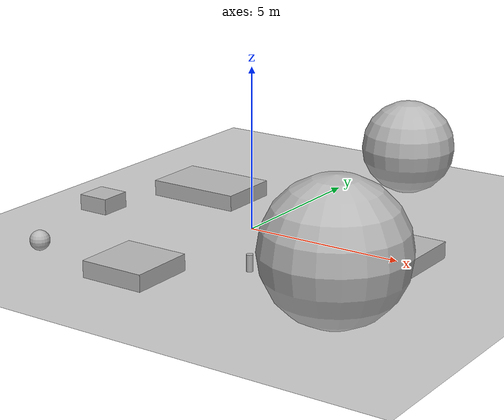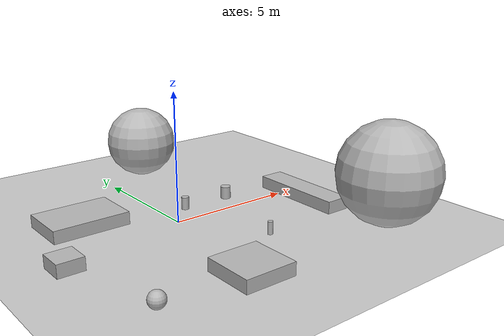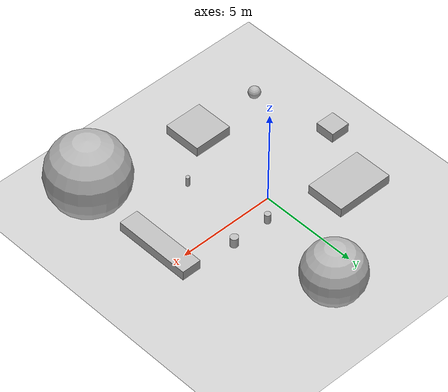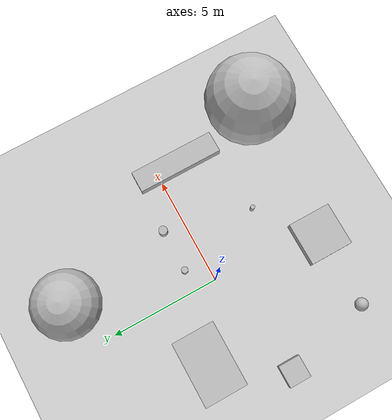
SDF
<sdf version='1.7'>
  <world name='default'>
    <light name='sun' type='directional'>
      <cast_shadows>1</cast_shadows>
      <pose>0 0 10 0 -0 0</pose>
      <diffuse>0.8 0.8 0.8 1</diffuse>
      <specular>0.2 0.2 0.2 1</specular>
      <attenuation>
        <range>1000</range>
        <constant>0.9</constant>
        <linear>0.01</linear>
        <quadratic>0.001</quadratic>
      </attenuation>
      <direction>-0.5 0.1 -0.9</direction>
      <spot>
        <inner_angle>0</inner_angle>
        <outer_angle>0</outer_angle>
        <falloff>0</falloff>
      </spot>
    </light>

    <model name='ground_plane'>
      <static>1</static>
      <link name='link'>
        <collision name='collision'>
          <geometry>
            <plane>
              <normal>0 0 1</normal>
              <size>100 100</size>
            </plane>
          </geometry>
          <surface>
            <contact>
              <collide_bitmask>65535</collide_bitmask>
              <ode/>
            </contact>
            <friction>
              <ode>
                <mu>100</mu>
                <mu2>50</mu2>
              </ode>
              <torsional>
                <ode/>
              </torsional>
            </friction>
            <bounce/>
          </surface>
          <max_contacts>10</max_contacts>
        </collision>
        <visual name='visual'>
          <cast_shadows>0</cast_shadows>
          <geometry>
            <plane>
              <normal>0 0 1</normal>
              <size>100 100</size>
            </plane>
          </geometry>
          <material>
            <script>
              <uri>file://media/materials/scripts/gazebo.material</uri>
              <name>Gazebo/Grey</name>
            </script>
          </material>
        </visual>
        <self_collide>0</self_collide>
        <enable_wind>0</enable_wind>
        <kinematic>0</kinematic>
      </link>
    </model>

    <gravity>0 0 -9.8</gravity>

    <physics type='ode'>
      <max_step_size>0.001</max_step_size>
      <real_time_factor>1</real_time_factor>
      <real_time_update_rate>1000</real_time_update_rate>
    </physics>

    <scene>
      <ambient>0.4 0.4 0.4 1</ambient>
      <background>0.7 0.7 0.7 1</background>
      <shadows>1</shadows>
    </scene>

    <model name='obstacle1'>
      <static>1</static>
      <pose>1 1 0.25 0 0 0</pose>
      <link name='link'>
        <collision name='collision'>
          <geometry>
            <cylinder>
              <radius>0.15</radius>
              <length>0.5</length>
            </cylinder>
          </geometry>
        </collision>
        <visual name='visual'>
          <geometry>
            <cylinder>
              <radius>0.15</radius>
              <length>0.5</length>
            </cylinder>
          </geometry>
        </visual>
      </link>
    </model>

    <model name='obstacle2'>
      <static>1</static>
      <pose>3 1 0.25 0 0 0</pose>
      <link name='link'>
        <collision name='collision'>
          <geometry>
            <cylinder>
              <radius>0.2</radius>
              <length>0.5</length>
            </cylinder>
          </geometry>
        </collision>
        <visual name='visual'>
          <geometry>
            <cylinder>
              <radius>0.2</radius>
              <length>0.5</length>
            </cylinder>
          </geometry>
        </visual>
      </link>
    </model>

    <model name='obstacle3'>
      <static>1</static>
      <pose>-4 -5 0.3 0 0 0</pose>
      <link name='link'>
        <collision name='collision'>
          <geometry>
            <sphere>
              <radius>0.3</radius>
            </sphere>
          </geometry>
        </collision>
        <visual name='visual'>
          <geometry>
            <sphere>
              <radius>0.3</radius>
            </sphere>
          </geometry>
        </visual>
      </link>
    </model>

    <model name='obstacle4'>
      <static>1</static>
      <pose>2 -3 0.25 0 0 0</pose>
      <link name='link'>
        <collision name='collision'>
          <geometry>
            <cylinder>
              <radius>0.1</radius>
              <length>0.5</length>
            </cylinder>
          </geometry>
        </collision>
        <visual name='visual'>
          <geometry>
            <cylinder>
              <radius>0.1</radius>
              <length>0.5</length>
            </cylinder>
          </geometry>
        </visual>
      </link>
    </model>

    <model name='obstacle5'>
      <static>1</static>
      <pose>-3 2 0.25 0 0 0</pose>
      <link name='link'>
        <collision name='collision'>
          <geometry>
            <box>
              <size>3 2 0.5</size>
            </box>
          </geometry>
        </collision>
        <visual name='visual'>
          <geometry>
            <box>
              <size>3 2 0.5</size>
            </box>
          </geometry>
        </visual>
      </link>
    </model>

    <model name='obstacle6'>
      <static>1</static>
      <pose>-5 -1 0.25 0 0 0</pose>
      <link name='link'>
        <collision name='collision'>
          <geometry>
            <box>
              <size>1 1 0.5</size>
            </box>
          </geometry>
        </collision>
        <visual name='visual'>
          <geometry>
            <box>
              <size>1 1 0.5</size>
            </box>
          </geometry>
        </visual>
      </link>
    </model>

    <model name='obstacle7'>
      <static>1</static>
      <pose>-0.5 -5 0.25 0 0 0</pose>
      <link name='link'>
        <collision name='collision'>
          <geometry>
            <box>
              <size>2 2 0.5</size>
            </box>
          </geometry>
        </collision>
        <visual name='visual'>
          <geometry>
            <box>
              <size>2 2 0.5</size>
            </box>
          </geometry>
        </visual>
      </link>
    </model>

    <model name='obstacle8'>
      <static>1</static>
      <pose>5.5 -1 0.25 0 0 0</pose>
      <link name='link'>
        <collision name='collision'>
          <geometry>
            <box>
              <size>1 4 0.5</size>
            </box>
          </geometry>
        </collision>
        <visual name='visual'>
          <geometry>
            <box>
              <size>1 4 0.5</size>
            </box>
          </geometry>
        </visual>
      </link>
    </model>

    <model name='obstacle9'>
      <static>1</static>
      <pose>2 6 1.5 0 0 0</pose>
      <link name='link'>
        <collision name='collision'>
          <geometry>
            <sphere>
              <radius>1.5</radius>
            </sphere>
          </geometry>
        </collision>
        <visual name='visual'>
          <geometry>
            <sphere>
              <radius>1.5</radius>
            </sphere>
          </geometry>
        </visual>
      </link>
    </model>

    <model name='obstacle10'>
      <static>1</static>
      <pose>6 -5 2 0 0 0</pose>
      <link name='link'>
        <collision name='collision'>
          <geometry>
            <sphere>
              <radius>2</radius>
            </sphere>
          </geometry>
        </collision>
        <visual name='visual'>
          <geometry>
            <sphere>
              <radius>2</radius>
            </sphere>
          </geometry>
        </visual>
      </link>
    </model>
  </world>
</sdf>
